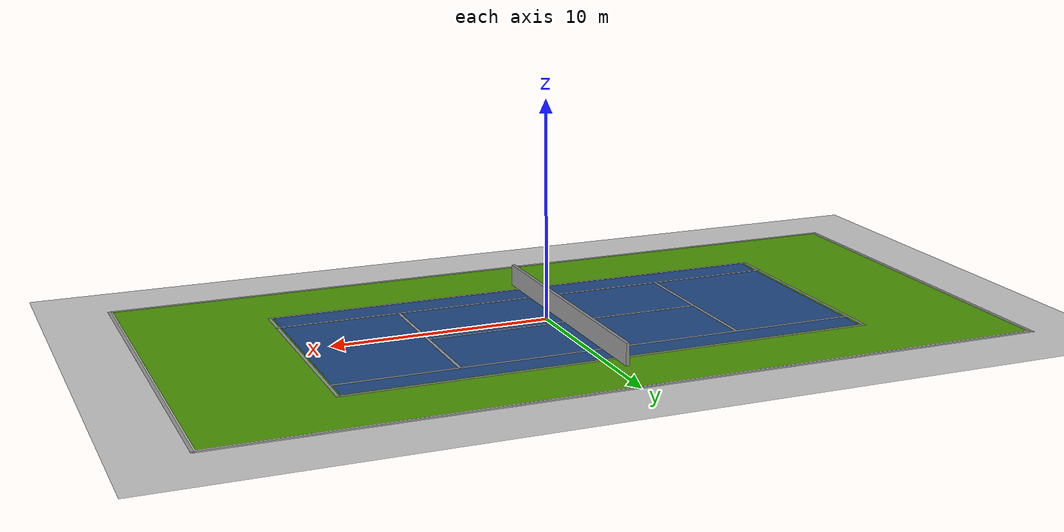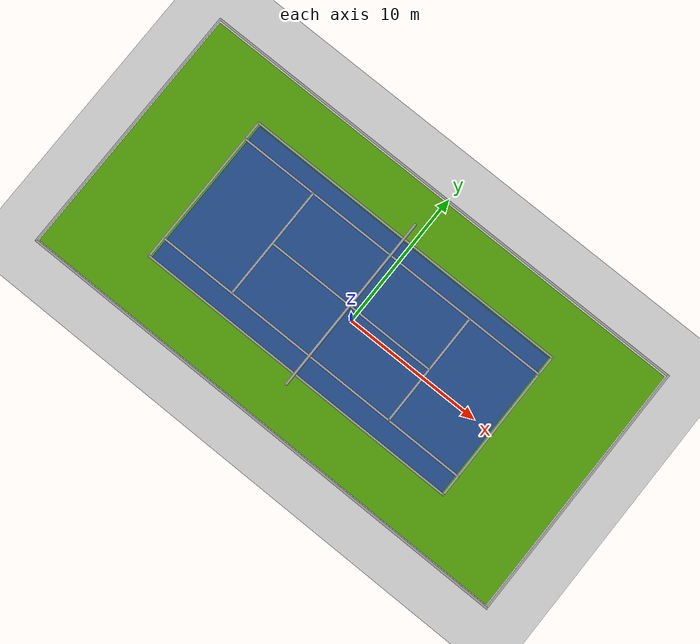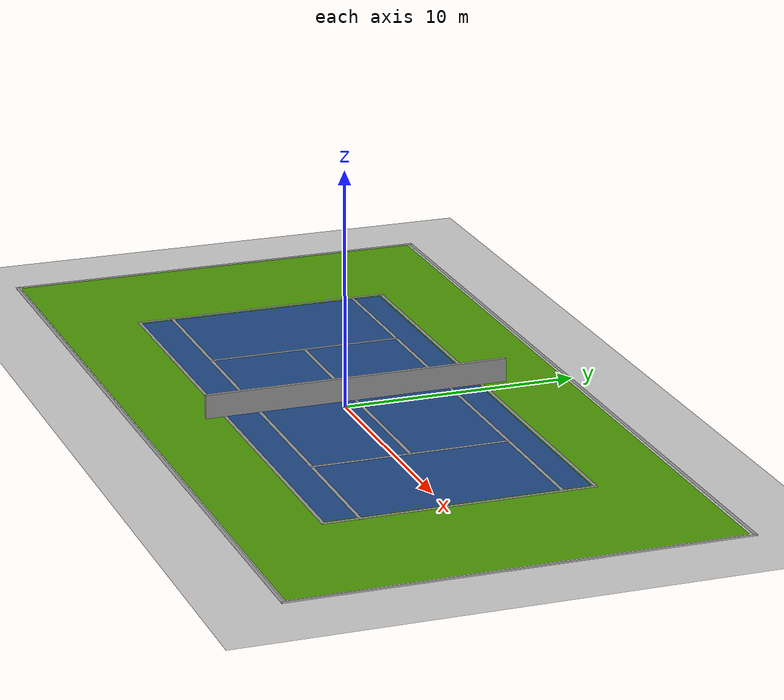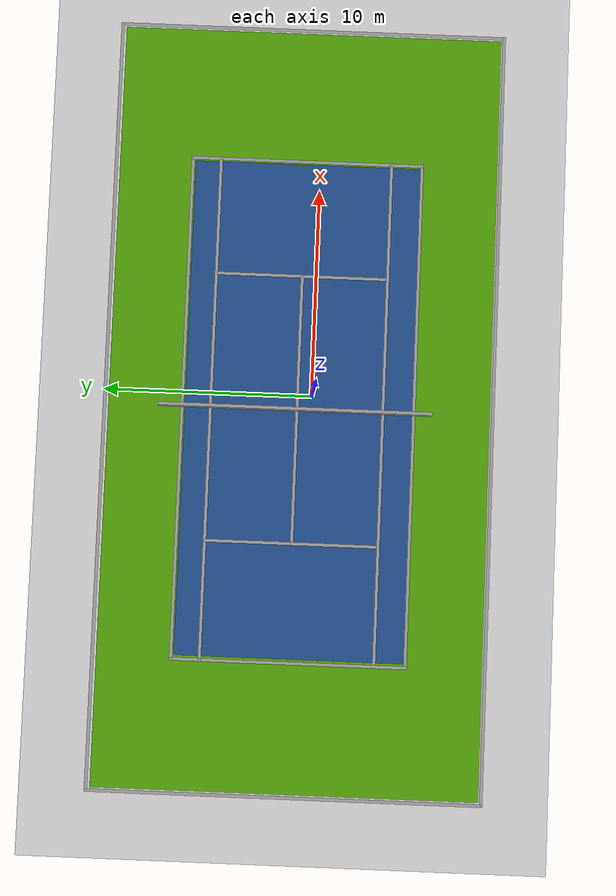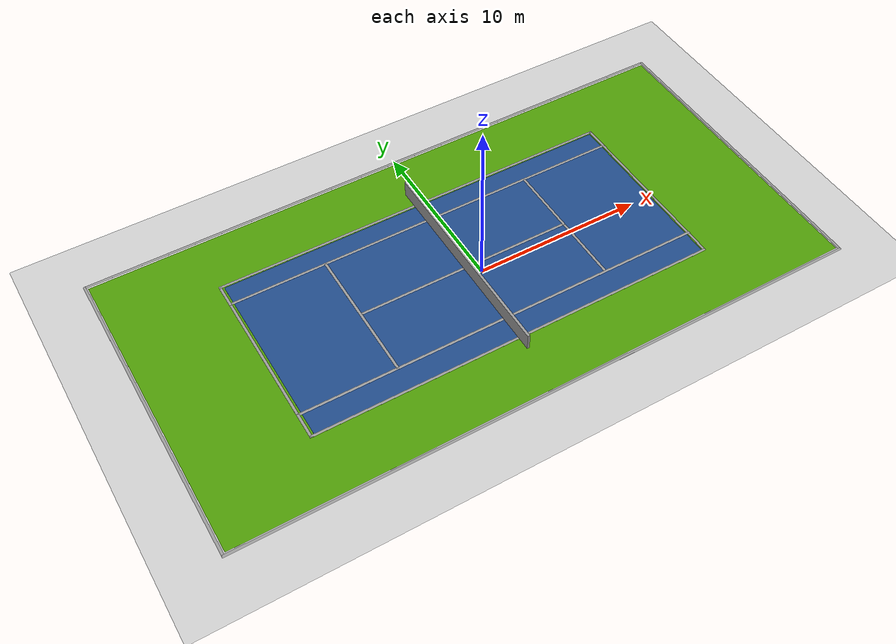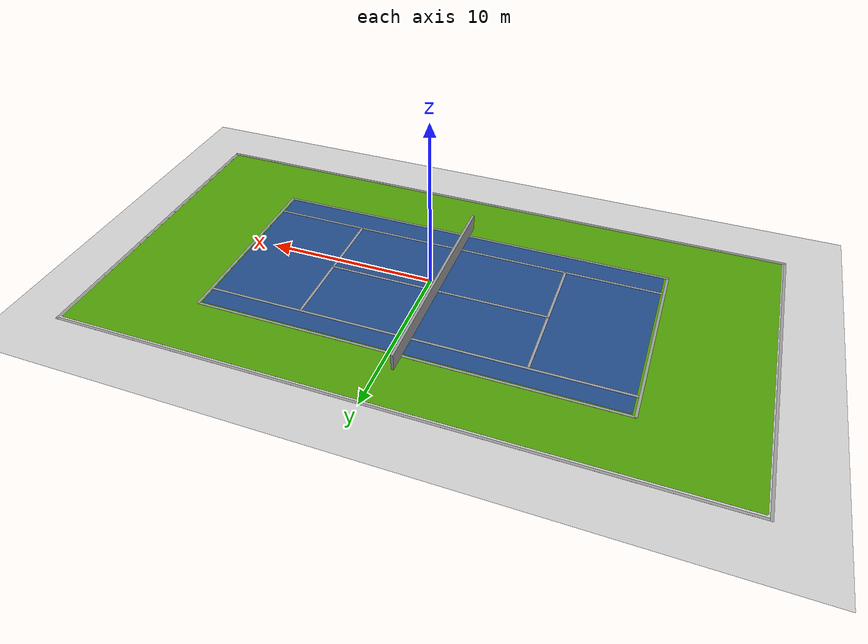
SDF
<sdf version="1.7">
 <world name="default">
  <light name="sun" type="directional">
   <pose>0 0 10 0 -0 0</pose>
   <diffuse>0.8 0.8 0.8 1</diffuse>
   <specular>0.2 0.2 0.2 1</specular>
   <attenuation>
    <range>1000</range>
    <constant>0.9</constant>
    <linear>0.01</linear>
    <quadratic>0.001</quadratic>
   </attenuation>
   <direction>-0.5 0.1 -0.9</direction>
   <spot><inner_angle>0</inner_angle><outer_angle>0</outer_angle><falloff>0</falloff></spot>
  </light>
  <model name="ground_plane">
   <static>1</static>
   <link name="link">
    <collision name="collision">
     <geometry><plane><normal>0 0 1</normal><size>100 100</size></plane></geometry>
     <surface>
      <contact><collide_bitmask>65535</collide_bitmask></contact>
      <friction><ode><mu>100</mu><mu2>50</mu2></ode></friction>
     </surface>
    </collision>
    <visual name="visual">
     <cast_shadows>0</cast_shadows>
     <geometry><plane><normal>0 0 1</normal><size>100 100</size></plane></geometry>
     <material>
      <script><uri>file://media/materials/scripts/gazebo.material</uri><name>Gazebo/Grey</name></script>
     </material>
    </visual>
   </link>
  </model>
  <gravity>0 0 -9.8</gravity>
  <magnetic_field>6e-06 2.3e-05 -4.2e-05</magnetic_field>
  <atmosphere type="adiabatic"/>
  <physics type="ode">
   <max_step_size>0.001</max_step_size>
   <real_time_factor>1</real_time_factor>
   <real_time_update_rate>1000</real_time_update_rate>
  </physics>
  <scene><ambient>0.4 0.4 0.4 1</ambient><background>0.7 0.7 0.7 1</background><shadows>1</shadows></scene>
  <spherical_coordinates>
   <surface_model>EARTH_WGS84</surface_model>
   <latitude_deg>0</latitude_deg>
   <longitude_deg>0</longitude_deg>
   <elevation>0</elevation>
   <heading_deg>0</heading_deg>
  </spherical_coordinates>
  <model name="Tennis_Court">
   <pose>-0.532001 0.606 0 0 -0 0</pose>
   <link name="Wall_11">
    <collision name="Wall_11_Collision">
     <geometry><box><size>24.25 0.15 0.003</size></box></geometry>
     <pose>0 0 0.0015 0 -0 0</pose>
    </collision>
    <visual name="Wall_11_Visual">
     <pose>0 0 0.0015 0 -0 0</pose>
     <geometry><box><size>24.25 0.15 0.003</size></box></geometry>
     <material>
      <script><uri>file://media/materials/scripts/gazebo.material</uri><name>Gazebo/Grey</name></script>
      <ambient>1 1 1 1</ambient>
     </material>
     <meta><layer>0</layer></meta>
    </visual>
    <pose>-0.102999 5.583 0 0 -0 0</pose>
   </link>
   <link name="Wall_12">
    <collision name="Wall_12_Collision">
     <geometry><box><size>11.25 0.15 0.003</size></box></geometry>
     <pose>0 0 0.0015 0 -0 0</pose>
    </collision>
    <visual name="Wall_12_Visual">
     <pose>0 0 0.0015 0 -0 0</pose>
     <geometry><box><size>11.25 0.15 0.003</size></box></geometry>
     <material>
      <script><uri>file://media/materials/scripts/gazebo.material</uri><name>Gazebo/Grey</name></script>
      <ambient>1 1 1 1</ambient>
     </material>
     <meta><layer>0</layer></meta>
    </visual>
    <pose>11.947 0.033 0 0 -0 -1.5708</pose>
   </link>
   <link name="Wall_13">
    <collision name="Wall_13_Collision">
     <geometry><box><size>24.25 0.15 0.003</size></box></geometry>
     <pose>0 0 0.0015 0 -0 0</pose>
    </collision>
    <visual name="Wall_13_Visual">
     <pose>0 0 0.0015 0 -0 0</pose>
     <geometry><box><size>24.25 0.15 0.003</size></box></geometry>
     <material>
      <script><uri>file://media/materials/scripts/gazebo.material</uri><name>Gazebo/Grey</name></script>
      <ambient>1 1 1 1</ambient>
     </material>
     <meta><layer>0</layer></meta>
    </visual>
    <pose>-0.102999 -5.517 0 0 -0 3.14159</pose>
   </link>
   <link name="Wall_14">
    <collision name="Wall_14_Collision">
     <geometry><box><size>11.25 0.15 0.003</size></box></geometry>
     <pose>0 0 0.0015 0 -0 0</pose>
    </collision>
    <visual name="Wall_14_Visual">
     <pose>0 0 0.0015 0 -0 0</pose>
     <geometry><box><size>11.25 0.15 0.003</size></box></geometry>
     <material>
      <script><uri>file://media/materials/scripts/gazebo.material</uri><name>Gazebo/Grey</name></script>
      <ambient>1 1 1 1</ambient>
     </material>
     <meta><layer>0</layer></meta>
    </visual>
    <pose>-12.153 0.033 0 0 -0 1.5708</pose>
   </link>
   <link name="Wall_22">
    <collision name="Wall_22_Collision">
     <geometry><box><size>24.25 0.15 0.003</size></box></geometry>
     <pose>0 0 0.0015 0 -0 0</pose>
    </collision>
    <visual name="Wall_22_Visual">
     <pose>0 0 0.0015 0 -0 0</pose>
     <geometry><box><size>24.25 0.15 0.003</size></box></geometry>
     <material>
      <script><uri>file://media/materials/scripts/gazebo.material</uri><name>Gazebo/Grey</name></script>
      <ambient>1 1 1 1</ambient>
     </material>
     <meta><layer>0</layer></meta>
    </visual>
    <pose>-0.102814 4.223 0 0 -0 0</pose>
   </link>
   <link name="Wall_27">
    <collision name="Wall_27_Collision">
     <geometry><box><size>24.25 0.15 0.003</size></box></geometry>
     <pose>0 0 0.0015 0 -0 0</pose>
    </collision>
    <visual name="Wall_27_Visual">
     <pose>0 0 0.0015 0 -0 0</pose>
     <geometry><box><size>24.25 0.15 0.003</size></box></geometry>
     <material>
      <script><uri>file://media/materials/scripts/gazebo.material</uri><name>Gazebo/Grey</name></script>
      <ambient>1 1 1 1</ambient>
     </material>
     <meta><layer>0</layer></meta>
    </visual>
    <pose>-0.068999 -4.041 0 0 -0 0</pose>
   </link>
   <link name="Wall_29">
    <collision name="Wall_29_Collision">
     <geometry><box><size>8.25 0.15 0.003</size></box></geometry>
     <pose>0 0 0.0015 0 -0 0</pose>
    </collision>
    <visual name="Wall_29_Visual">
     <pose>0 0 0.0015 0 -0 0</pose>
     <geometry><box><size>8.25 0.15 0.003</size></box></geometry>
     <material>
      <script><uri>file://media/materials/scripts/gazebo.material</uri><name>Gazebo/Grey</name></script>
      <ambient>1 1 1 1</ambient>
     </material>
     <meta><layer>0</layer></meta>
    </visual>
    <pose>-6.511 0.106 0 0 -0 -1.5708</pose>
   </link>
   <link name="Wall_31">
    <collision name="Wall_31_Collision">
     <geometry><box><size>8.25 0.15 0.003</size></box></geometry>
     <pose>0 0 0.0015 0 -0 0</pose>
    </collision>
    <visual name="Wall_31_Visual">
     <pose>0 0 0.0015 0 -0 0</pose>
     <geometry><box><size>8.25 0.15 0.003</size></box></geometry>
     <material>
      <script><uri>file://media/materials/scripts/gazebo.material</uri><name>Gazebo/Grey</name></script>
      <ambient>1 1 1 1</ambient>
     </material>
     <meta><layer>0</layer></meta>
    </visual>
    <pose>6.346 0.074 0 0 -0 -1.5708</pose>
   </link>
   <link name="Wall_33">
    <collision name="Wall_33_Collision">
     <geometry><box><size>13 0.15 0.003</size></box></geometry>
     <pose>0 0 0.0015 0 -0 0</pose>
    </collision>
    <visual name="Wall_33_Visual">
     <pose>0 0 0.0015 0 -0 0</pose>
     <geometry><box><size>13 0.15 0.003</size></box></geometry>
     <material>
      <script><uri>file://media/materials/scripts/gazebo.material</uri><name>Gazebo/Grey</name></script>
      <ambient>1 1 1 1</ambient>
     </material>
     <meta><layer>0</layer></meta>
    </visual>
    <pose>-0.085999 0.074 0 0 -0 0</pose>
   </link>
   <link name="Wall_4">
    <collision name="Wall_4_Collision">
     <geometry><box><size>37 0.15 0.001</size></box></geometry>
     <pose>0 0 0.0005 0 -0 0</pose>
    </collision>
    <visual name="Wall_4_Visual">
     <pose>0 0 0.0005 0 -0 0</pose>
     <geometry><box><size>37 0.15 0.001</size></box></geometry>
     <material>
      <script><uri>file://media/materials/scripts/gazebo.material</uri><name>Gazebo/Grey</name></script>
      <ambient>1 1 1 1</ambient>
     </material>
     <meta><layer>0</layer></meta>
    </visual>
    <pose>1e-06 9.3 0 0 -0 0</pose>
   </link>
   <link name="Wall_49">
    <collision name="Wall_49_Collision">
     <geometry><box><size>13 0.15 1</size></box></geometry>
     <pose>0 0 0.5 0 -0 0</pose>
    </collision>
    <visual name="Wall_49_Visual">
     <pose>0 0 0.5 0 -0 0</pose>
     <geometry><box><size>13 0.15 1</size></box></geometry>
     <material>
      <script><uri>file://media/materials/scripts/gazebo.material</uri><name>Gazebo/Grey</name></script>
      <ambient>1 1 1 1</ambient>
     </material>
     <meta><layer>0</layer></meta>
    </visual>
    <pose>-0.111999 0.163 0 0 -0 -1.5708</pose>
   </link>
   <link name="Wall_5">
    <collision name="Wall_5_Collision">
     <geometry><box><size>18.75 0.15 0.001</size></box></geometry>
     <pose>0 0 0.0005 0 -0 0</pose>
    </collision>
    <visual name="Wall_5_Visual">
     <pose>0 0 0.0005 0 -0 0</pose>
     <geometry><box><size>18.75 0.15 0.001</size></box></geometry>
     <material>
      <script><uri>file://media/materials/scripts/gazebo.material</uri><name>Gazebo/Grey</name></script>
      <ambient>1 1 1 1</ambient>
     </material>
     <meta><layer>0</layer></meta>
    </visual>
    <pose>18.425 0 0 0 -0 -1.5708</pose>
   </link>
   <link name="Wall_52">
    <collision name="Wall_52_Collision">
     <geometry><box><size>36.56 18.28 0.001</size></box></geometry>
     <pose>0 0 0.0005 0 -0 0</pose>
    </collision>
    <visual name="Wall_52_Visual">
     <pose>0 0 0.0005 0 -0 0</pose>
     <geometry><box><size>36.56 18.28 0.001</size></box></geometry>
     <material>
      <script><uri>file://media/materials/scripts/gazebo.material</uri><name>Gazebo/Grey</name></script>
      <ambient>0.305882 0.603922 0.0235294 1</ambient>
     </material>
     <meta><layer>0</layer></meta>
    </visual>
    <pose>-0.00185 -0.026025 0 0 -0 0</pose>
   </link>
   <link name="Wall_54">
    <collision name="Wall_54_Collision">
     <geometry><box><size>23.77 10.97 0.002</size></box></geometry>
     <pose>0 0 0.001 0 -0 0</pose>
    </collision>
    <visual name="Wall_54_Visual">
     <pose>0 0 0.001 0 -0 0</pose>
     <geometry><box><size>23.77 10.97 0.002</size></box></geometry>
     <material>
      <script><uri>file://media/materials/scripts/gazebo.material</uri><name>Gazebo/Grey</name></script>
      <ambient>0.12549 0.290196 0.529412 1</ambient>
     </material>
     <meta><layer>0</layer></meta>
    </visual>
    <pose>-0.080209 -0.033347 0 0 -0 0</pose>
   </link>
   <link name="Wall_6">
    <collision name="Wall_6_Collision">
     <geometry><box><size>37 0.15 0.001</size></box></geometry>
     <pose>0 0 0.0005 0 -0 0</pose>
    </collision>
    <visual name="Wall_6_Visual">
     <pose>0 0 0.0005 0 -0 0</pose>
     <geometry><box><size>37 0.15 0.001</size></box></geometry>
     <material>
      <script><uri>file://media/materials/scripts/gazebo.material</uri><name>Gazebo/Grey</name></script>
      <ambient>1 1 1 1</ambient>
     </material>
     <meta><layer>0</layer></meta>
    </visual>
    <pose>1e-06 -9.3 0 0 -0 3.14159</pose>
   </link>
   <link name="Wall_7">
    <collision name="Wall_7_Collision">
     <geometry><box><size>18.75 0.15 0.001</size></box></geometry>
     <pose>0 0 0.0005 0 -0 0</pose>
    </collision>
    <visual name="Wall_7_Visual">
     <pose>0 0 0.0005 0 -0 0</pose>
     <geometry><box><size>18.75 0.15 0.001</size></box></geometry>
     <material>
      <script><uri>file://media/materials/scripts/gazebo.material</uri><name>Gazebo/Grey</name></script>
      <ambient>1 1 1 1</ambient>
     </material>
     <meta><layer>0</layer></meta>
    </visual>
    <pose>-18.425 0 0 0 -0 1.5708</pose>
   </link>
   <static>1</static>
  </model>
 </world>
</sdf>
